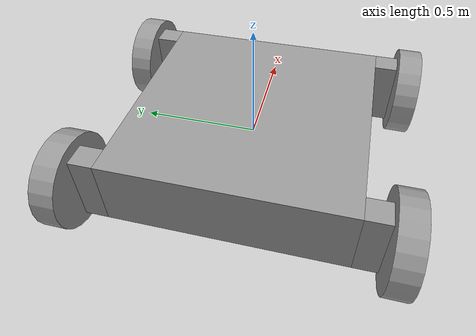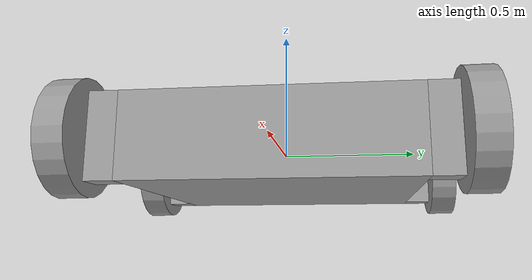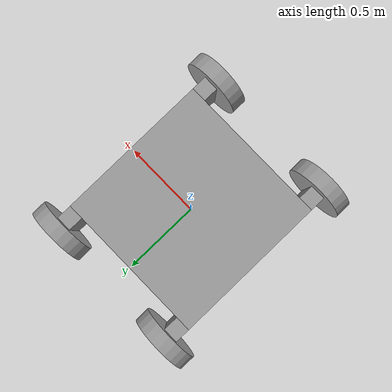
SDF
<?xml version='1.0'?>
<sdf version='1.6'>
  <model name='mymodel'>
    <link name='link_4'>
      <inertial>
        <mass>1</mass>
        <inertia>
          <ixx>0.166667</ixx>
          <ixy>0</ixy>
          <ixz>0</ixz>
          <iyy>0.166667</iyy>
          <iyz>0</iyz>
          <izz>0.166667</izz>
        </inertia>
        <pose frame=''>0 0 0.3 0 -0 0</pose>
      </inertial>
      <pose frame=''>0 0 0 0 -0 0</pose>
      <gravity>1</gravity>
      <self_collide>0</self_collide>
      <kinematic>0</kinematic>
      <enable_wind>0</enable_wind>
      <visual name='visual'>
        <pose frame=''>0 0 0 0 -0 0</pose>
        <geometry>
          <box>
            <size>1 1 0.3</size>
          </box>
        </geometry>
        <material>
          <lighting>1</lighting>
          <script>
            <uri>file://media/materials/scripts/gazebo.material</uri>
            <name>Gazebo/Grey</name>
          </script>
          <shader type='vertex'>
            <normal_map>__default__</normal_map>
          </shader>
          <ambient>0.3 0.3 0.3 1</ambient>
          <diffuse>0.7 0.7 0.7 1</diffuse>
          <specular>0.01 0.01 0.01 1</specular>
          <emissive>0 0 0 1</emissive>
        </material>
        <transparency>0</transparency>
        <cast_shadows>1</cast_shadows>
      </visual>
      <collision name='collision'>
        <laser_retro>0</laser_retro>
        <max_contacts>10</max_contacts>
        <pose frame=''>0 0 0 0 -0 0</pose>
        <geometry>
          <box>
            <size>1 1 0.3</size>
          </box>
        </geometry>
        <surface>
          <friction>
            <ode>
              <mu>1</mu>
              <mu2>1</mu2>
              <fdir1>0 0 0</fdir1>
              <slip1>0</slip1>
              <slip2>0</slip2>
            </ode>
            <torsional>
              <coefficient>1</coefficient>
              <patch_radius>0</patch_radius>
              <surface_radius>0</surface_radius>
              <use_patch_radius>1</use_patch_radius>
              <ode>
                <slip>0</slip>
              </ode>
            </torsional>
          </friction>
          <bounce>
            <restitution_coefficient>0</restitution_coefficient>
            <threshold>1e+06</threshold>
          </bounce>
          <contact>
            <collide_without_contact>0</collide_without_contact>
            <collide_without_contact_bitmask>1</collide_without_contact_bitmask>
            <collide_bitmask>1</collide_bitmask>
            <ode>
              <soft_cfm>0</soft_cfm>
              <soft_erp>0.2</soft_erp>
              <kp>1e+13</kp>
              <kd>1</kd>
              <max_vel>0.01</max_vel>
              <min_depth>0</min_depth>
            </ode>
            <bullet>
              <split_impulse>1</split_impulse>
              <split_impulse_penetration_threshold>-0.01</split_impulse_penetration_threshold>
              <soft_cfm>0</soft_cfm>
              <soft_erp>0.2</soft_erp>
              <kp>1e+13</kp>
              <kd>1</kd>
            </bullet>
          </contact>
        </surface>
      </collision>
    </link>
    <link name='link_5_clone'>
      <inertial>
        <mass>1</mass>
        <inertia>
          <ixx>0.166667</ixx>
          <ixy>0</ixy>
          <ixz>0</ixz>
          <iyy>0.166667</iyy>
          <iyz>0</iyz>
          <izz>0.166667</izz>
        </inertia>
        <pose frame=''>0 0 0 0 -0 0</pose>
      </inertial>
      <pose frame=''>-0.45 -0.55 0 0 -0 0</pose>
      <gravity>1</gravity>
      <self_collide>0</self_collide>
      <kinematic>0</kinematic>
      <enable_wind>0</enable_wind>
      <visual name='visual'>
        <pose frame=''>0 0 0 0 -0 0</pose>
        <geometry>
          <box>
            <size>0.1 0.1 0.3</size>
          </box>
        </geometry>
        <material>
          <lighting>1</lighting>
          <script>
            <uri>file://media/materials/scripts/gazebo.material</uri>
            <name>Gazebo/Grey</name>
          </script>
          <shader type='vertex'>
            <normal_map>__default__</normal_map>
          </shader>
          <ambient>0.3 0.3 0.3 1</ambient>
          <diffuse>0.7 0.7 0.7 1</diffuse>
          <specular>0.01 0.01 0.01 1</specular>
          <emissive>0 0 0 1</emissive>
        </material>
        <transparency>0</transparency>
        <cast_shadows>1</cast_shadows>
      </visual>
      <collision name='collision'>
        <laser_retro>0</laser_retro>
        <max_contacts>10</max_contacts>
        <pose frame=''>0 0 0 0 -0 0</pose>
        <geometry>
          <box>
            <size>0.1 0.1 0.3</size>
          </box>
        </geometry>
        <surface>
          <friction>
            <ode>
              <mu>1</mu>
              <mu2>1</mu2>
              <fdir1>0 0 0</fdir1>
              <slip1>0</slip1>
              <slip2>0</slip2>
            </ode>
            <torsional>
              <coefficient>1</coefficient>
              <patch_radius>0</patch_radius>
              <surface_radius>0</surface_radius>
              <use_patch_radius>1</use_patch_radius>
              <ode>
                <slip>0</slip>
              </ode>
            </torsional>
          </friction>
          <bounce>
            <restitution_coefficient>0</restitution_coefficient>
            <threshold>1e+06</threshold>
          </bounce>
          <contact>
            <collide_without_contact>0</collide_without_contact>
            <collide_without_contact_bitmask>1</collide_without_contact_bitmask>
            <collide_bitmask>1</collide_bitmask>
            <ode>
              <soft_cfm>0</soft_cfm>
              <soft_erp>0.2</soft_erp>
              <kp>1e+13</kp>
              <kd>1</kd>
              <max_vel>0.01</max_vel>
              <min_depth>0</min_depth>
            </ode>
            <bullet>
              <split_impulse>1</split_impulse>
              <split_impulse_penetration_threshold>-0.01</split_impulse_penetration_threshold>
              <soft_cfm>0</soft_cfm>
              <soft_erp>0.2</soft_erp>
              <kp>1e+13</kp>
              <kd>1</kd>
            </bullet>
          </contact>
        </surface>
      </collision>
    </link>
    <link name='link_5_clone_0'>
      <inertial>
        <mass>1</mass>
        <inertia>
          <ixx>0.166667</ixx>
          <ixy>0</ixy>
          <ixz>0</ixz>
          <iyy>0.166667</iyy>
          <iyz>0</iyz>
          <izz>0.166667</izz>
        </inertia>
        <pose frame=''>0 0 0 0 -0 0</pose>
      </inertial>
      <pose frame=''>0.45 0.55 0 0 -0 0</pose>
      <gravity>1</gravity>
      <self_collide>0</self_collide>
      <kinematic>0</kinematic>
      <enable_wind>0</enable_wind>
      <visual name='visual'>
        <pose frame=''>0 0 0 0 -0 0</pose>
        <geometry>
          <box>
            <size>0.1 0.1 0.3</size>
          </box>
        </geometry>
        <material>
          <lighting>1</lighting>
          <script>
            <uri>file://media/materials/scripts/gazebo.material</uri>
            <name>Gazebo/Grey</name>
          </script>
          <shader type='vertex'>
            <normal_map>__default__</normal_map>
          </shader>
          <ambient>0.3 0.3 0.3 1</ambient>
          <diffuse>0.7 0.7 0.7 1</diffuse>
          <specular>0.01 0.01 0.01 1</specular>
          <emissive>0 0 0 1</emissive>
        </material>
        <transparency>0</transparency>
        <cast_shadows>1</cast_shadows>
      </visual>
      <collision name='collision'>
        <laser_retro>0</laser_retro>
        <max_contacts>10</max_contacts>
        <pose frame=''>0 0 0 0 -0 0</pose>
        <geometry>
          <box>
            <size>0.1 0.1 0.3</size>
          </box>
        </geometry>
        <surface>
          <friction>
            <ode>
              <mu>1</mu>
              <mu2>1</mu2>
              <fdir1>0 0 0</fdir1>
              <slip1>0</slip1>
              <slip2>0</slip2>
            </ode>
            <torsional>
              <coefficient>1</coefficient>
              <patch_radius>0</patch_radius>
              <surface_radius>0</surface_radius>
              <use_patch_radius>1</use_patch_radius>
              <ode>
                <slip>0</slip>
              </ode>
            </torsional>
          </friction>
          <bounce>
            <restitution_coefficient>0</restitution_coefficient>
            <threshold>1e+06</threshold>
          </bounce>
          <contact>
            <collide_without_contact>0</collide_without_contact>
            <collide_without_contact_bitmask>1</collide_without_contact_bitmask>
            <collide_bitmask>1</collide_bitmask>
            <ode>
              <soft_cfm>0</soft_cfm>
              <soft_erp>0.2</soft_erp>
              <kp>1e+13</kp>
              <kd>1</kd>
              <max_vel>0.01</max_vel>
              <min_depth>0</min_depth>
            </ode>
            <bullet>
              <split_impulse>1</split_impulse>
              <split_impulse_penetration_threshold>-0.01</split_impulse_penetration_threshold>
              <soft_cfm>0</soft_cfm>
              <soft_erp>0.2</soft_erp>
              <kp>1e+13</kp>
              <kd>1</kd>
            </bullet>
          </contact>
        </surface>
      </collision>
    </link>
    <link name='link_5_clone_1'>
      <inertial>
        <mass>1</mass>
        <inertia>
          <ixx>0.166667</ixx>
          <ixy>0</ixy>
          <ixz>0</ixz>
          <iyy>0.166667</iyy>
          <iyz>0</iyz>
          <izz>0.166667</izz>
        </inertia>
        <pose frame=''>0 0 0 0 -0 0</pose>
      </inertial>
      <pose frame=''>0.45 -0.55 0 0 -0 0</pose>
      <gravity>1</gravity>
      <self_collide>0</self_collide>
      <kinematic>0</kinematic>
      <enable_wind>0</enable_wind>
      <visual name='visual'>
        <pose frame=''>0 0 0 0 -0 0</pose>
        <geometry>
          <box>
            <size>0.1 0.1 0.3</size>
          </box>
        </geometry>
        <material>
          <lighting>1</lighting>
          <script>
            <uri>file://media/materials/scripts/gazebo.material</uri>
            <name>Gazebo/Grey</name>
          </script>
          <shader type='vertex'>
            <normal_map>__default__</normal_map>
          </shader>
          <ambient>0.3 0.3 0.3 1</ambient>
          <diffuse>0.7 0.7 0.7 1</diffuse>
          <specular>0.01 0.01 0.01 1</specular>
          <emissive>0 0 0 1</emissive>
        </material>
        <transparency>0</transparency>
        <cast_shadows>1</cast_shadows>
      </visual>
      <collision name='collision'>
        <laser_retro>0</laser_retro>
        <max_contacts>10</max_contacts>
        <pose frame=''>0 0 0 0 -0 0</pose>
        <geometry>
          <box>
            <size>0.1 0.1 0.3</size>
          </box>
        </geometry>
        <surface>
          <friction>
            <ode>
              <mu>1</mu>
              <mu2>1</mu2>
              <fdir1>0 0 0</fdir1>
              <slip1>0</slip1>
              <slip2>0</slip2>
            </ode>
            <torsional>
              <coefficient>1</coefficient>
              <patch_radius>0</patch_radius>
              <surface_radius>0</surface_radius>
              <use_patch_radius>1</use_patch_radius>
              <ode>
                <slip>0</slip>
              </ode>
            </torsional>
          </friction>
          <bounce>
            <restitution_coefficient>0</restitution_coefficient>
            <threshold>1e+06</threshold>
          </bounce>
          <contact>
            <collide_without_contact>0</collide_without_contact>
            <collide_without_contact_bitmask>1</collide_without_contact_bitmask>
            <collide_bitmask>1</collide_bitmask>
            <ode>
              <soft_cfm>0</soft_cfm>
              <soft_erp>0.2</soft_erp>
              <kp>1e+13</kp>
              <kd>1</kd>
              <max_vel>0.01</max_vel>
              <min_depth>0</min_depth>
            </ode>
            <bullet>
              <split_impulse>1</split_impulse>
              <split_impulse_penetration_threshold>-0.01</split_impulse_penetration_threshold>
              <soft_cfm>0</soft_cfm>
              <soft_erp>0.2</soft_erp>
              <kp>1e+13</kp>
              <kd>1</kd>
            </bullet>
          </contact>
        </surface>
      </collision>
    </link>
    <link name='link_5_clone_2'>
      <inertial>
        <mass>1</mass>
        <inertia>
          <ixx>0.166667</ixx>
          <ixy>0</ixy>
          <ixz>0</ixz>
          <iyy>0.166667</iyy>
          <iyz>0</iyz>
          <izz>0.166667</izz>
        </inertia>
        <pose frame=''>0 0 0 0 -0 0</pose>
      </inertial>
      <pose frame=''>-0.45 0.55 0 0 -0 0</pose>
      <gravity>1</gravity>
      <self_collide>0</self_collide>
      <kinematic>0</kinematic>
      <enable_wind>0</enable_wind>
      <visual name='visual'>
        <pose frame=''>0 0 0 0 -0 0</pose>
        <geometry>
          <box>
            <size>0.1 0.1 0.3</size>
          </box>
        </geometry>
        <material>
          <lighting>1</lighting>
          <script>
            <uri>file://media/materials/scripts/gazebo.material</uri>
            <name>Gazebo/Grey</name>
          </script>
          <shader type='vertex'>
            <normal_map>__default__</normal_map>
          </shader>
          <ambient>0.3 0.3 0.3 1</ambient>
          <diffuse>0.7 0.7 0.7 1</diffuse>
          <specular>0.01 0.01 0.01 1</specular>
          <emissive>0 0 0 1</emissive>
        </material>
        <transparency>0</transparency>
        <cast_shadows>1</cast_shadows>
      </visual>
      <collision name='collision'>
        <laser_retro>0</laser_retro>
        <max_contacts>10</max_contacts>
        <pose frame=''>0 0 0 0 -0 0</pose>
        <geometry>
          <box>
            <size>0.1 0.1 0.3</size>
          </box>
        </geometry>
        <surface>
          <friction>
            <ode>
              <mu>1</mu>
              <mu2>1</mu2>
              <fdir1>0 0 0</fdir1>
              <slip1>0</slip1>
              <slip2>0</slip2>
            </ode>
            <torsional>
              <coefficient>1</coefficient>
              <patch_radius>0</patch_radius>
              <surface_radius>0</surface_radius>
              <use_patch_radius>1</use_patch_radius>
              <ode>
                <slip>0</slip>
              </ode>
            </torsional>
          </friction>
          <bounce>
            <restitution_coefficient>0</restitution_coefficient>
            <threshold>1e+06</threshold>
          </bounce>
          <contact>
            <collide_without_contact>0</collide_without_contact>
            <collide_without_contact_bitmask>1</collide_without_contact_bitmask>
            <collide_bitmask>1</collide_bitmask>
            <ode>
              <soft_cfm>0</soft_cfm>
              <soft_erp>0.2</soft_erp>
              <kp>1e+13</kp>
              <kd>1</kd>
              <max_vel>0.01</max_vel>
              <min_depth>0</min_depth>
            </ode>
            <bullet>
              <split_impulse>1</split_impulse>
              <split_impulse_penetration_threshold>-0.01</split_impulse_penetration_threshold>
              <soft_cfm>0</soft_cfm>
              <soft_erp>0.2</soft_erp>
              <kp>1e+13</kp>
              <kd>1</kd>
            </bullet>
          </contact>
        </surface>
      </collision>
    </link>
    <link name='link_6_clone'>
      <inertial>
        <mass>1</mass>
        <inertia>
          <ixx>0.145833</ixx>
          <ixy>0</ixy>
          <ixz>0</ixz>
          <iyy>0.145833</iyy>
          <iyz>0</iyz>
          <izz>0.125</izz>
        </inertia>
        <pose frame=''>0 0 0 0 -0 0</pose>
      </inertial>
      <pose frame=''>-0.45 0.651838 0 1.58 -0 0</pose>
      <gravity>1</gravity>
      <self_collide>0</self_collide>
      <kinematic>0</kinematic>
      <enable_wind>0</enable_wind>
      <visual name='visual'>
        <pose frame=''>0 0 0 0 -0 0</pose>
        <geometry>
          <cylinder>
            <radius>0.2</radius>
            <length>0.1</length>
          </cylinder>
        </geometry>
        <material>
          <lighting>1</lighting>
          <script>
            <uri>file://media/materials/scripts/gazebo.material</uri>
            <name>Gazebo/Grey</name>
          </script>
          <shader type='vertex'>
            <normal_map>__default__</normal_map>
          </shader>
          <ambient>0.3 0.3 0.3 1</ambient>
          <diffuse>0.7 0.7 0.7 1</diffuse>
          <specular>0.01 0.01 0.01 1</specular>
          <emissive>0 0 0 1</emissive>
        </material>
        <transparency>0</transparency>
        <cast_shadows>1</cast_shadows>
      </visual>
      <collision name='collision'>
        <laser_retro>0</laser_retro>
        <max_contacts>10</max_contacts>
        <pose frame=''>0 0 0 0 -0 0</pose>
        <geometry>
          <cylinder>
            <radius>0.2</radius>
            <length>0.1</length>
          </cylinder>
        </geometry>
        <surface>
          <friction>
            <ode>
              <mu>1</mu>
              <mu2>1</mu2>
              <fdir1>0 0 0</fdir1>
              <slip1>0</slip1>
              <slip2>0</slip2>
            </ode>
            <torsional>
              <coefficient>1</coefficient>
              <patch_radius>0</patch_radius>
              <surface_radius>0</surface_radius>
              <use_patch_radius>1</use_patch_radius>
              <ode>
                <slip>0</slip>
              </ode>
            </torsional>
          </friction>
          <bounce>
            <restitution_coefficient>0</restitution_coefficient>
            <threshold>1e+06</threshold>
          </bounce>
          <contact>
            <collide_without_contact>0</collide_without_contact>
            <collide_without_contact_bitmask>1</collide_without_contact_bitmask>
            <collide_bitmask>1</collide_bitmask>
            <ode>
              <soft_cfm>0</soft_cfm>
              <soft_erp>0.2</soft_erp>
              <kp>1e+13</kp>
              <kd>1</kd>
              <max_vel>0.01</max_vel>
              <min_depth>0</min_depth>
            </ode>
            <bullet>
              <split_impulse>1</split_impulse>
              <split_impulse_penetration_threshold>-0.01</split_impulse_penetration_threshold>
              <soft_cfm>0</soft_cfm>
              <soft_erp>0.2</soft_erp>
              <kp>1e+13</kp>
              <kd>1</kd>
            </bullet>
          </contact>
        </surface>
      </collision>
    </link>
    <link name='link_6_clone_0'>
      <inertial>
        <mass>1</mass>
        <inertia>
          <ixx>0.145833</ixx>
          <ixy>0</ixy>
          <ixz>0</ixz>
          <iyy>0.145833</iyy>
          <iyz>0</iyz>
          <izz>0.125</izz>
        </inertia>
        <pose frame=''>0 0 0 0 -0 0</pose>
      </inertial>
      <pose frame=''>0.449999 0.651839 0 1.58 -0 0</pose>
      <gravity>1</gravity>
      <self_collide>0</self_collide>
      <kinematic>0</kinematic>
      <enable_wind>0</enable_wind>
      <visual name='visual'>
        <pose frame=''>0 0 0 0 -0 0</pose>
        <geometry>
          <cylinder>
            <radius>0.2</radius>
            <length>0.1</length>
          </cylinder>
        </geometry>
        <material>
          <lighting>1</lighting>
          <script>
            <uri>file://media/materials/scripts/gazebo.material</uri>
            <name>Gazebo/Grey</name>
          </script>
          <shader type='vertex'>
            <normal_map>__default__</normal_map>
          </shader>
          <ambient>0.3 0.3 0.3 1</ambient>
          <diffuse>0.7 0.7 0.7 1</diffuse>
          <specular>0.01 0.01 0.01 1</specular>
          <emissive>0 0 0 1</emissive>
        </material>
        <transparency>0</transparency>
        <cast_shadows>1</cast_shadows>
      </visual>
      <collision name='collision'>
        <laser_retro>0</laser_retro>
        <max_contacts>10</max_contacts>
        <pose frame=''>0 0 0 0 -0 0</pose>
        <geometry>
          <cylinder>
            <radius>0.2</radius>
            <length>0.1</length>
          </cylinder>
        </geometry>
        <surface>
          <friction>
            <ode>
              <mu>1</mu>
              <mu2>1</mu2>
              <fdir1>0 0 0</fdir1>
              <slip1>0</slip1>
              <slip2>0</slip2>
            </ode>
            <torsional>
              <coefficient>1</coefficient>
              <patch_radius>0</patch_radius>
              <surface_radius>0</surface_radius>
              <use_patch_radius>1</use_patch_radius>
              <ode>
                <slip>0</slip>
              </ode>
            </torsional>
          </friction>
          <bounce>
            <restitution_coefficient>0</restitution_coefficient>
            <threshold>1e+06</threshold>
          </bounce>
          <contact>
            <collide_without_contact>0</collide_without_contact>
            <collide_without_contact_bitmask>1</collide_without_contact_bitmask>
            <collide_bitmask>1</collide_bitmask>
            <ode>
              <soft_cfm>0</soft_cfm>
              <soft_erp>0.2</soft_erp>
              <kp>1e+13</kp>
              <kd>1</kd>
              <max_vel>0.01</max_vel>
              <min_depth>0</min_depth>
            </ode>
            <bullet>
              <split_impulse>1</split_impulse>
              <split_impulse_penetration_threshold>-0.01</split_impulse_penetration_threshold>
              <soft_cfm>0</soft_cfm>
              <soft_erp>0.2</soft_erp>
              <kp>1e+13</kp>
              <kd>1</kd>
            </bullet>
          </contact>
        </surface>
      </collision>
    </link>
    <link name='link_6_clone_1'>
      <inertial>
        <mass>1</mass>
        <inertia>
          <ixx>0.145833</ixx>
          <ixy>0</ixy>
          <ixz>0</ixz>
          <iyy>0.145833</iyy>
          <iyz>0</iyz>
          <izz>0.125</izz>
        </inertia>
        <pose frame=''>0 0 0 0 -0 0</pose>
      </inertial>
      <pose frame=''>-0.45 -0.651838 0 1.58 -0 0</pose>
      <gravity>1</gravity>
      <self_collide>0</self_collide>
      <kinematic>0</kinematic>
      <enable_wind>0</enable_wind>
      <visual name='visual'>
        <pose frame=''>0 0 0 0 -0 0</pose>
        <geometry>
          <cylinder>
            <radius>0.2</radius>
            <length>0.1</length>
          </cylinder>
        </geometry>
        <material>
          <lighting>1</lighting>
          <script>
            <uri>file://media/materials/scripts/gazebo.material</uri>
            <name>Gazebo/Grey</name>
          </script>
          <shader type='vertex'>
            <normal_map>__default__</normal_map>
          </shader>
          <ambient>0.3 0.3 0.3 1</ambient>
          <diffuse>0.7 0.7 0.7 1</diffuse>
          <specular>0.01 0.01 0.01 1</specular>
          <emissive>0 0 0 1</emissive>
        </material>
        <transparency>0</transparency>
        <cast_shadows>1</cast_shadows>
      </visual>
      <collision name='collision'>
        <laser_retro>0</laser_retro>
        <max_contacts>10</max_contacts>
        <pose frame=''>0 0 0 0 -0 0</pose>
        <geometry>
          <cylinder>
            <radius>0.2</radius>
            <length>0.1</length>
          </cylinder>
        </geometry>
        <surface>
          <friction>
            <ode>
              <mu>1</mu>
              <mu2>1</mu2>
              <fdir1>0 0 0</fdir1>
              <slip1>0</slip1>
              <slip2>0</slip2>
            </ode>
            <torsional>
              <coefficient>1</coefficient>
              <patch_radius>0</patch_radius>
              <surface_radius>0</surface_radius>
              <use_patch_radius>1</use_patch_radius>
              <ode>
                <slip>0</slip>
              </ode>
            </torsional>
          </friction>
          <bounce>
            <restitution_coefficient>0</restitution_coefficient>
            <threshold>1e+06</threshold>
          </bounce>
          <contact>
            <collide_without_contact>0</collide_without_contact>
            <collide_without_contact_bitmask>1</collide_without_contact_bitmask>
            <collide_bitmask>1</collide_bitmask>
            <ode>
              <soft_cfm>0</soft_cfm>
              <soft_erp>0.2</soft_erp>
              <kp>1e+13</kp>
              <kd>1</kd>
              <max_vel>0.01</max_vel>
              <min_depth>0</min_depth>
            </ode>
            <bullet>
              <split_impulse>1</split_impulse>
              <split_impulse_penetration_threshold>-0.01</split_impulse_penetration_threshold>
              <soft_cfm>0</soft_cfm>
              <soft_erp>0.2</soft_erp>
              <kp>1e+13</kp>
              <kd>1</kd>
            </bullet>
          </contact>
        </surface>
      </collision>
    </link>
    <link name='link_6_clone_2'>
      <inertial>
        <mass>1</mass>
        <inertia>
          <ixx>0.145833</ixx>
          <ixy>0</ixy>
          <ixz>0</ixz>
          <iyy>0.145833</iyy>
          <iyz>0</iyz>
          <izz>0.125</izz>
        </inertia>
        <pose frame=''>0 0 0 0 -0 0</pose>
      </inertial>
      <pose frame=''>0.449999 -0.651838 0 1.58 -0 0</pose>
      <gravity>1</gravity>
      <self_collide>0</self_collide>
      <kinematic>0</kinematic>
      <enable_wind>0</enable_wind>
      <visual name='visual'>
        <pose frame=''>0 0 0 0 -0 0</pose>
        <geometry>
          <cylinder>
            <radius>0.2</radius>
            <length>0.1</length>
          </cylinder>
        </geometry>
        <material>
          <lighting>1</lighting>
          <script>
            <uri>file://media/materials/scripts/gazebo.material</uri>
            <name>Gazebo/Grey</name>
          </script>
          <shader type='vertex'>
            <normal_map>__default__</normal_map>
          </shader>
          <ambient>0.3 0.3 0.3 1</ambient>
          <diffuse>0.7 0.7 0.7 1</diffuse>
          <specular>0.01 0.01 0.01 1</specular>
          <emissive>0 0 0 1</emissive>
        </material>
        <transparency>0</transparency>
        <cast_shadows>1</cast_shadows>
      </visual>
      <collision name='collision'>
        <laser_retro>0</laser_retro>
        <max_contacts>10</max_contacts>
        <pose frame=''>0 0 0 0 -0 0</pose>
        <geometry>
          <cylinder>
            <radius>0.2</radius>
            <length>0.1</length>
          </cylinder>
        </geometry>
        <surface>
          <friction>
            <ode>
              <mu>1</mu>
              <mu2>1</mu2>
              <fdir1>0 0 0</fdir1>
              <slip1>0</slip1>
              <slip2>0</slip2>
            </ode>
            <torsional>
              <coefficient>1</coefficient>
              <patch_radius>0</patch_radius>
              <surface_radius>0</surface_radius>
              <use_patch_radius>1</use_patch_radius>
              <ode>
                <slip>0</slip>
              </ode>
            </torsional>
          </friction>
          <bounce>
            <restitution_coefficient>0</restitution_coefficient>
            <threshold>1e+06</threshold>
          </bounce>
          <contact>
            <collide_without_contact>0</collide_without_contact>
            <collide_without_contact_bitmask>1</collide_without_contact_bitmask>
            <collide_bitmask>1</collide_bitmask>
            <ode>
              <soft_cfm>0</soft_cfm>
              <soft_erp>0.2</soft_erp>
              <kp>1e+13</kp>
              <kd>1</kd>
              <max_vel>0.01</max_vel>
              <min_depth>0</min_depth>
            </ode>
            <bullet>
              <split_impulse>1</split_impulse>
              <split_impulse_penetration_threshold>-0.01</split_impulse_penetration_threshold>
              <soft_cfm>0</soft_cfm>
              <soft_erp>0.2</soft_erp>
              <kp>1e+13</kp>
              <kd>1</kd>
            </bullet>
          </contact>
        </surface>
      </collision>
    </link>
    <joint name='link_4_JOINT_4' type='fixed'>
      <parent>link_4</parent>
      <child>link_5_clone</child>
      <pose frame=''>0 0 0 0 -0 0</pose>
      <physics>
        <ode>
          <limit>
            <cfm>0</cfm>
            <erp>0.2</erp>
          </limit>
          <suspension>
            <cfm>0</cfm>
            <erp>0.2</erp>
          </suspension>
        </ode>
      </physics>
    </joint>
    <joint name='link_4_JOINT_5' type='fixed'>
      <parent>link_4</parent>
      <child>link_5_clone_2</child>
      <pose frame=''>0 0 0 0 -0 0</pose>
      <physics>
        <ode>
          <limit>
            <cfm>0</cfm>
            <erp>0.2</erp>
          </limit>
          <suspension>
            <cfm>0</cfm>
            <erp>0.2</erp>
          </suspension>
        </ode>
      </physics>
    </joint>
    <joint name='link_4_JOINT_6' type='fixed'>
      <parent>link_4</parent>
      <child>link_5_clone_0</child>
      <pose frame=''>0 0 0 0 -0 0</pose>
      <physics>
        <ode>
          <limit>
            <cfm>0</cfm>
            <erp>0.2</erp>
          </limit>
          <suspension>
            <cfm>0</cfm>
            <erp>0.2</erp>
          </suspension>
        </ode>
      </physics>
    </joint>
    <joint name='link_4_JOINT_7' type='fixed'>
      <parent>link_4</parent>
      <child>link_5_clone_1</child>
      <pose frame=''>0 0 0 0 -0 0</pose>
      <physics>
        <ode>
          <limit>
            <cfm>0</cfm>
            <erp>0.2</erp>
          </limit>
          <suspension>
            <cfm>0</cfm>
            <erp>0.2</erp>
          </suspension>
        </ode>
      </physics>
    </joint>
    <joint name='link_5_clone_0_JOINT_12' type='revolute'>
      <parent>link_5_clone_0</parent>
      <child>link_6_clone_0</child>
      <pose frame=''>0 0 0 0 -0 0</pose>
      <axis>
        <xyz>1 0 0</xyz>
        <use_parent_model_frame>0</use_parent_model_frame>
        <limit>
          <lower>-1.79769e+308</lower>
          <upper>1.79769e+308</upper>
          <effort>-1</effort>
          <velocity>-1</velocity>
        </limit>
        <dynamics>
          <spring_reference>0</spring_reference>
          <spring_stiffness>0</spring_stiffness>
          <damping>0</damping>
          <friction>0</friction>
        </dynamics>
      </axis>
      <physics>
        <ode>
          <limit>
            <cfm>0</cfm>
            <erp>0.2</erp>
          </limit>
          <suspension>
            <cfm>0</cfm>
            <erp>0.2</erp>
          </suspension>
        </ode>
      </physics>
    </joint>
    <joint name='link_5_clone_1_JOINT_10' type='revolute'>
      <parent>link_5_clone_1</parent>
      <child>link_6_clone_2</child>
      <pose frame=''>0 0 0 0 -0 0</pose>
      <axis>
        <xyz>1 0 0</xyz>
        <use_parent_model_frame>0</use_parent_model_frame>
        <limit>
          <lower>-1.79769e+308</lower>
          <upper>1.79769e+308</upper>
          <effort>-1</effort>
          <velocity>-1</velocity>
        </limit>
        <dynamics>
          <spring_reference>0</spring_reference>
          <spring_stiffness>0</spring_stiffness>
          <damping>0</damping>
          <friction>0</friction>
        </dynamics>
      </axis>
      <physics>
        <ode>
          <limit>
            <cfm>0</cfm>
            <erp>0.2</erp>
          </limit>
          <suspension>
            <cfm>0</cfm>
            <erp>0.2</erp>
          </suspension>
        </ode>
      </physics>
    </joint>
    <joint name='link_5_clone_2_JOINT_11' type='revolute'>
      <parent>link_5_clone_2</parent>
      <child>link_6_clone</child>
      <pose frame=''>0 0 0 0 -0 0</pose>
      <axis>
        <xyz>1 0 0</xyz>
        <use_parent_model_frame>0</use_parent_model_frame>
        <limit>
          <lower>-1.79769e+308</lower>
          <upper>1.79769e+308</upper>
          <effort>-1</effort>
          <velocity>-1</velocity>
        </limit>
        <dynamics>
          <spring_reference>0</spring_reference>
          <spring_stiffness>0</spring_stiffness>
          <damping>0</damping>
          <friction>0</friction>
        </dynamics>
      </axis>
      <physics>
        <ode>
          <limit>
            <cfm>0</cfm>
            <erp>0.2</erp>
          </limit>
          <suspension>
            <cfm>0</cfm>
            <erp>0.2</erp>
          </suspension>
        </ode>
      </physics>
    </joint>
    <joint name='link_5_clone_JOINT_9' type='revolute'>
      <parent>link_5_clone</parent>
      <child>link_6_clone_1</child>
      <pose frame=''>0 0 0 0 -0 0</pose>
      <axis>
        <xyz>1 0 0</xyz>
        <use_parent_model_frame>0</use_parent_model_frame>
        <limit>
          <lower>-1.79769e+308</lower>
          <upper>1.79769e+308</upper>
          <effort>-1</effort>
          <velocity>-1</velocity>
        </limit>
        <dynamics>
          <spring_reference>0</spring_reference>
          <spring_stiffness>0</spring_stiffness>
          <damping>0</damping>
          <friction>0</friction>
        </dynamics>
      </axis>
      <physics>
        <ode>
          <limit>
            <cfm>0</cfm>
            <erp>0.2</erp>
          </limit>
          <suspension>
            <cfm>0</cfm>
            <erp>0.2</erp>
          </suspension>
        </ode>
      </physics>
    </joint>
    <static>0</static>
    <allow_auto_disable>1</allow_auto_disable>
  </model>
</sdf>
